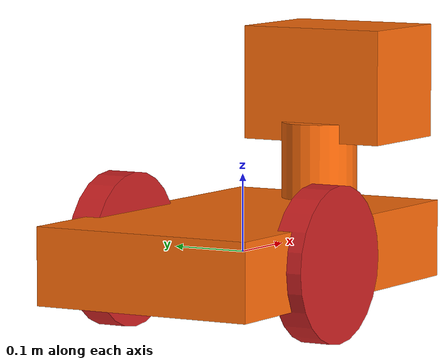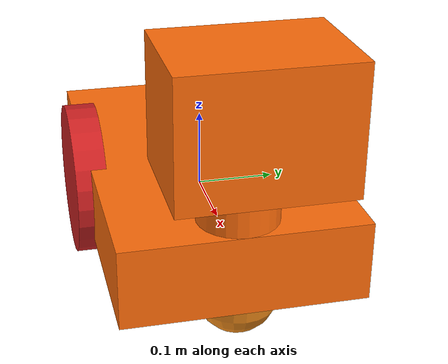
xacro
<?xml version="1.0"?>
<robot xmlns:xacro="http://www.ros.org/wiki/xacro" name="robot_xacro">
<xacro:include filename="$(find exp_assignment2)/urdf/robot.gazebo"/>

	<xacro:property name="length_wheel" value="0.04" />
	<xacro:property name="radius_wheel" value="0.1" />

	<xacro:macro name="default_inertial" params="mass">
               <inertial>
                       <mass value="${mass}" />
                       <origin rpy="0 1.5707 1.5707" xyz="0 0 0"/>
                       <inertia ixx="0.000526666666667" ixy="0" ixz="0" iyy="0.000526666666667" iyz="0" izz="0.001"/>
               </inertial>
	</xacro:macro>

    <xacro:macro name="wheel_geometry">
		<geometry>
       			<cylinder length="${length_wheel}" radius="${radius_wheel}"/>
     	</geometry>
	</xacro:macro>

  <material name="black">
    <color rgba="0.0 0.0 0.0 1.0"/>
  </material>
  <material name="blue">
    <color rgba="0.203125 0.23828125 0.28515625 1.0"/>
  </material>
  <material name="green">
    <color rgba="0.0 0.8 0.0 1.0"/>
  </material>
  <material name="grey">
    <color rgba="0.2 0.2 0.2 1.0"/>
  </material>
  <material name="orange">
    <color rgba="1.0 0.423529411765 0.0392156862745 1.0"/>
  </material>
  <material name="brown">
    <color rgba="0.870588235294 0.811764705882 0.764705882353 1.0"/>
  </material>
  <material name="red">
    <color rgba="0.80078125 0.12890625 0.1328125 1.0"/>
  </material>
  <material name="white">
    <color rgba="1.0 1.0 1.0 1.0"/>
  </material>

	<link name="link_chassis">
    <!-- pose and inertial -->
    <pose>0 0 0.1 0 0 0</pose>
    <inertial>
      <mass value="5"/>
      <origin rpy="0 0 0" xyz="0 0 0.1"/>
      <inertia ixx="0.0395416666667" ixy="0" ixz="0" iyy="0.106208333333" iyz="0" izz="0.106208333333"/>
    </inertial>
    <!-- body -->
    <collision name="collision_chassis">
      <geometry>
        <box size="0.5 0.3 0.1"/>
      </geometry>
    </collision>
    <visual>
      <origin rpy="0 0 0" xyz="0 0 0"/>
      <geometry>
        <box size="0.5 0.3 0.1"/>
      </geometry>
      <material name="orange"/>
    </visual>
    <!-- caster front -->
    <collision name="caster_front_collision">
      <origin rpy=" 0 0 0" xyz="0.35 0 -0.05"/>
      <geometry>
        <sphere radius="0.05"/>
      </geometry>
    </collision>
    <visual name="caster_front_visual">
      <origin rpy=" 0 0 0" xyz="0.2 0 -0.05"/>
      <geometry>
        <sphere radius="0.05"/>
      </geometry>
    </visual>
  </link>

  <!-- wheels -->

  <link name="link_right_wheel">
    <xacro:default_inertial mass="0.2"/>
    <collision name="link_right_wheel_collision">
      <origin rpy="0 1.5707 1.5707" xyz="0 0 0"/>
      <xacro:wheel_geometry />
    </collision>
    <visual name="link_right_wheel_visual">
      <origin rpy="0 1.5707 1.5707" xyz="0 0 0"/>
      <xacro:wheel_geometry />
      <material name="red"/>
    </visual>
  </link>

   <link name="link_left_wheel">
    <xacro:default_inertial mass="0.2"/>
    <collision name="link_left_wheel_collision">
      <origin rpy="0 1.5707 1.5707" xyz="0 0 0"/>
      <xacro:wheel_geometry />
    </collision>
    <visual name="link_left_wheel_visual">
      <origin rpy="0 1.5707 1.5707" xyz="0 0 0"/>
      <xacro:wheel_geometry />
      <material name="red"/>
    </visual>
  </link>

  <joint name="joint_right_wheel" type="continuous">
    <origin rpy="0 0 0" xyz="-0.05 0.15 0"/>
    <child link="link_right_wheel"/>
    <parent link="link_chassis"/>
    <axis rpy="0 0 0" xyz="0 1 0"/>
    <limit effort="10000" velocity="1000"/>
    <joint_properties damping="1.0" friction="1.0"/>
  </joint>

  <joint name="joint_left_wheel" type="continuous">
    <origin rpy="0 0 0" xyz="-0.05 -0.15 0"/>
    <child link="link_left_wheel"/>
    <parent link="link_chassis"/>
    <axis rpy="0 0 0" xyz="0 1 0"/>
    <limit effort="10000" velocity="1000"/>
    <joint_properties damping="1.0" friction="1.0"/>
  </joint>

  <!-- neck and head -->
  <link name="link_neck">
    <xacro:default_inertial mass="0.5"/>
    <collision name="link_neck_collision">
      <origin rpy="0 0 0" xyz="0.1 0 0.05"/>
      <geometry>
        <cylinder length="0.1" radius="0.05"/>
      </geometry>
    </collision>
    <visual name="link_neck_visual">
      <origin rpy="0 0 0" xyz="0.1 0 0.05"/>
      <geometry>
        <cylinder length="0.1" radius="0.05"/>
      </geometry>
      <material name="orange"/>
    </visual>
  </link>

  <link name="link_head">
    <xacro:default_inertial mass="0.5"/>
    <collision name="link_head_collision">
      <origin rpy="0 0 0" xyz="0.15 0 0.15"/>
      <geometry>
        <box size= "0.15 0.2 0.15"/>
      </geometry>
    </collision>
    <visual name="link_head_visual">
      <origin rpy="0 0 0" xyz="0.15 0 0.15"/>
      <geometry>
        <box size= "0.15 0.2 0.15"/>
      </geometry>
      <material name="orange"/>
    </visual>
  </link>

  <joint name="joint_neck" type="fixed">
    <axis xyz="0 1 0" />
	  <origin xyz="0.1 0 0.05" rpy="0 0 0"/>
    <child link="link_neck"/>
    <parent link="link_chassis"/>
  </joint>

  <joint name="joint_head" type="revolute">
    <origin rpy="0 0 0" xyz="0 0 0"/>
    <child link="link_head"/>
    <parent link="link_neck"/>
    <axis xyz="0 0 1"/>
    <limit effort="1000.0" lower="-1.57" upper="1.57" velocity="0.1"/>/>
    <joint_properties damping="1.0" friction="1.0"/>
  </joint>

  <!-- camera -->
  <link name="camera_link">
	    <collision>
	      <origin xyz="0.025 0 0.15" rpy="0 0 0"/>
	      <geometry>
		      <box size="0.05 0.05 0.05"/>
	      </geometry>
	    </collision>
	    <visual>
	      <origin xyz="0.025 0 0.15" rpy="0 0 0"/>
	      <geometry>
		      <box size="0.05 0.05 0.05"/>
	      </geometry>
	      <material name="grey"/>
	    </visual>
	    <inertial>
	      <mass value="1e-5" />
	      <origin xyz="0 0 0" rpy="0 0 0"/>
	      <inertia ixx="1e-6" ixy="0" ixz="0" iyy="1e-6" iyz="0" izz="1e-6" />
	    </inertial>
  </link>

  <joint name="camera_joint" type="fixed">
	    <axis xyz="0 1 0" />
	    <origin xyz="0.15 0 0.0" rpy="0 0 0"/>
      <child link="camera_link"/>
	    <parent link="link_head"/>
	</joint>

  <transmission name="joint_head_trans">
	  <type>transmission_interface/SimpleTransmission</type>
	  <joint name="joint_head">
		<hardwareInterface>hardware_interface/EffortJointInterface</hardwareInterface>
	</joint>
	<actuator name="motor1">
		<hardwareInterface>hardware_interface/EffortJointInterface</hardwareInterface>
		<mechanicalInterface>1</mechanicalInterface>
	</actuator>
  </transmission>

</robot>
